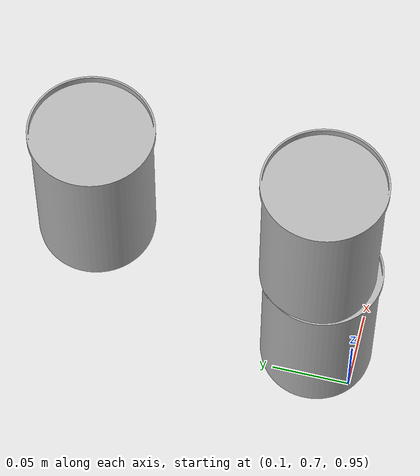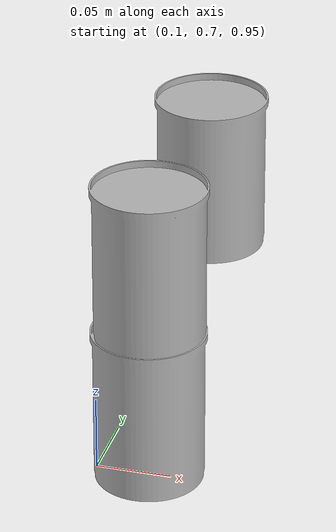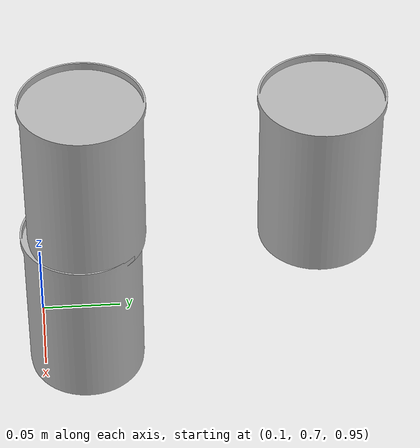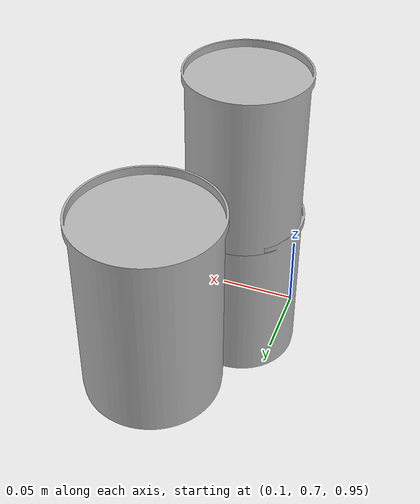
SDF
<sdf version="1.6">
 <world name="default">
  <model name="ground_plane">
   <static>1</static>
   <link name="link">
    <collision name="collision">
     <geometry><plane><normal>0 0 1</normal><size>100 100</size></plane></geometry>
     <surface>
      <contact><collide_bitmask>65535</collide_bitmask></contact>
      <friction><ode><mu>100</mu><mu2>50</mu2></ode></friction>
     </surface>
    </collision>
    <visual name="visual">
     <cast_shadows>0</cast_shadows>
     <geometry><plane><normal>0 0 1</normal><size>100 100</size></plane></geometry>
     <material>
      <script><uri>file://media/materials/scripts/gazebo.material</uri><name>Gazebo/Grey</name></script>
     </material>
    </visual>
   </link>
  </model>
  <model name="can_shelf_1_4_1">
   <link name="link_0">
    <inertial>
     <mass>0.4</mass>
     <inertia>
      <ixx>0.000936</ixx>
      <ixy>0</ixy>
      <ixz>0</ixz>
      <iyy>0.000936</iyy>
      <iyz>0</iyz>
      <izz>0.001066</izz>
     </inertia>
    </inertial>
    <visual name="visual">
     <geometry><mesh><uri>model://standard_can_fit/standard_can_fit.dae</uri><scale>1 1 1</scale></mesh></geometry>
    </visual>
    <collision name="collision">
     <geometry><mesh><uri>model://standard_can_fit/standard_can_fit.dae</uri><scale>1 1 1</scale></mesh></geometry>
     <surface>
      <friction>
       <ode><mu>1</mu><mu2>1</mu2><fdir1>0 0 0</fdir1><slip1>0</slip1><slip2>0</slip2></ode>
       <torsional>
        <coefficient>1</coefficient>
        <patch_radius>0</patch_radius>
        <surface_radius>0</surface_radius>
        <use_patch_radius>1</use_patch_radius>
        <ode><slip>0</slip></ode>
       </torsional>
      </friction>
      <bounce><restitution_coefficient>0</restitution_coefficient><threshold>1e+06</threshold></bounce>
      <contact>
       <collide_without_contact>0</collide_without_contact>
       <collide_without_contact_bitmask>1</collide_without_contact_bitmask>
       <collide_bitmask>1</collide_bitmask>
       <ode>
        <soft_cfm>0</soft_cfm>
        <soft_erp>0.2</soft_erp>
        <kp>1e+13</kp>
        <kd>1</kd>
        <max_vel>0.01</max_vel>
        <min_depth>0.01</min_depth>
       </ode>
       <bullet>
        <split_impulse>1</split_impulse>
        <split_impulse_penetration_threshold>-0.01</split_impulse_penetration_threshold>
        <soft_cfm>0</soft_cfm>
        <soft_erp>0.2</soft_erp>
        <kp>1e+13</kp>
        <kd>1</kd>
       </bullet>
      </contact>
     </surface>
    </collision>
   </link>
   <static>1</static>
   <pose>0.131274 0.872446 1.0901 0.000891 -0.000977 1.52314</pose>
  </model>
  <model name="can_shelf_2_4_1">
   <link name="link_0">
    <inertial>
     <mass>0.4</mass>
     <inertia>
      <ixx>0.000936</ixx>
      <ixy>0</ixy>
      <ixz>0</ixz>
      <iyy>0.000936</iyy>
      <iyz>0</iyz>
      <izz>0.001066</izz>
     </inertia>
    </inertial>
    <visual name="visual">
     <geometry><mesh><uri>model://standard_can_fit/standard_can_fit.dae</uri><scale>1 1 1</scale></mesh></geometry>
    </visual>
    <collision name="collision">
     <geometry><mesh><uri>model://standard_can_fit/standard_can_fit.dae</uri><scale>1 1 1</scale></mesh></geometry>
     <surface>
      <friction>
       <ode><mu>1</mu><mu2>1</mu2><fdir1>0 0 0</fdir1><slip1>0</slip1><slip2>0</slip2></ode>
       <torsional>
        <coefficient>1</coefficient>
        <patch_radius>0</patch_radius>
        <surface_radius>0</surface_radius>
        <use_patch_radius>1</use_patch_radius>
        <ode><slip>0</slip></ode>
       </torsional>
      </friction>
      <bounce><restitution_coefficient>0</restitution_coefficient><threshold>1e+06</threshold></bounce>
      <contact>
       <collide_without_contact>0</collide_without_contact>
       <collide_without_contact_bitmask>1</collide_without_contact_bitmask>
       <collide_bitmask>1</collide_bitmask>
       <ode>
        <soft_cfm>0</soft_cfm>
        <soft_erp>0.2</soft_erp>
        <kp>1e+13</kp>
        <kd>1</kd>
        <max_vel>0.01</max_vel>
        <min_depth>0.01</min_depth>
       </ode>
       <bullet>
        <split_impulse>1</split_impulse>
        <split_impulse_penetration_threshold>-0.01</split_impulse_penetration_threshold>
        <soft_cfm>0</soft_cfm>
        <soft_erp>0.2</soft_erp>
        <kp>1e+13</kp>
        <kd>1</kd>
       </bullet>
      </contact>
     </surface>
    </collision>
   </link>
   <static>1</static>
   <pose>0.128033 0.729832 1.09006 0.000891 -0.000977 1.52314</pose>
  </model>
  <model name="can_shelf_2_4_0">
   <link name="link_0">
    <inertial>
     <mass>0.4</mass>
     <inertia>
      <ixx>0.000936</ixx>
      <ixy>0</ixy>
      <ixz>0</ixz>
      <iyy>0.000936</iyy>
      <iyz>0</iyz>
      <izz>0.001066</izz>
     </inertia>
    </inertial>
    <visual name="visual">
     <geometry><mesh><uri>model://standard_can_fit/standard_can_fit.dae</uri><scale>1 1 1</scale></mesh></geometry>
    </visual>
    <collision name="collision">
     <geometry><mesh><uri>model://standard_can_fit/standard_can_fit.dae</uri><scale>1 1 1</scale></mesh></geometry>
     <surface>
      <friction>
       <ode><mu>1</mu><mu2>1</mu2><fdir1>0 0 0</fdir1><slip1>0</slip1><slip2>0</slip2></ode>
       <torsional>
        <coefficient>1</coefficient>
        <patch_radius>0</patch_radius>
        <surface_radius>0</surface_radius>
        <use_patch_radius>1</use_patch_radius>
        <ode><slip>0</slip></ode>
       </torsional>
      </friction>
      <bounce><restitution_coefficient>0</restitution_coefficient><threshold>1e+06</threshold></bounce>
      <contact>
       <collide_without_contact>0</collide_without_contact>
       <collide_without_contact_bitmask>1</collide_without_contact_bitmask>
       <collide_bitmask>1</collide_bitmask>
       <ode>
        <soft_cfm>0</soft_cfm>
        <soft_erp>0.2</soft_erp>
        <kp>1e+13</kp>
        <kd>1</kd>
        <max_vel>0.01</max_vel>
        <min_depth>0.01</min_depth>
       </ode>
       <bullet>
        <split_impulse>1</split_impulse>
        <split_impulse_penetration_threshold>-0.01</split_impulse_penetration_threshold>
        <soft_cfm>0</soft_cfm>
        <soft_erp>0.2</soft_erp>
        <kp>1e+13</kp>
        <kd>1</kd>
       </bullet>
      </contact>
     </surface>
    </collision>
   </link>
   <static>1</static>
   <pose>0.127962 0.72717 0.987166 0.000891 -0.000977 1.52314</pose>
  </model>
 </world>
</sdf>
